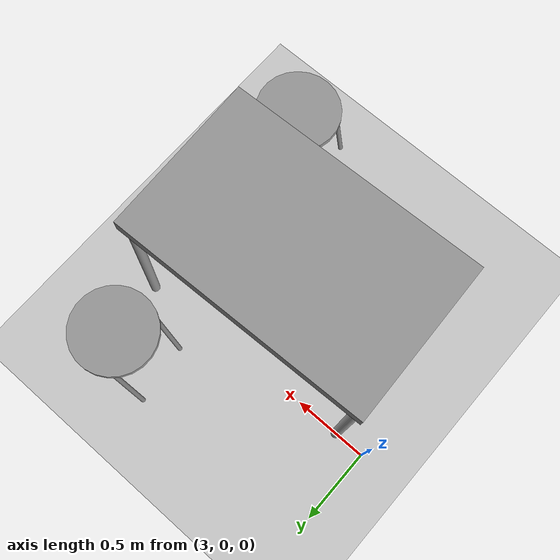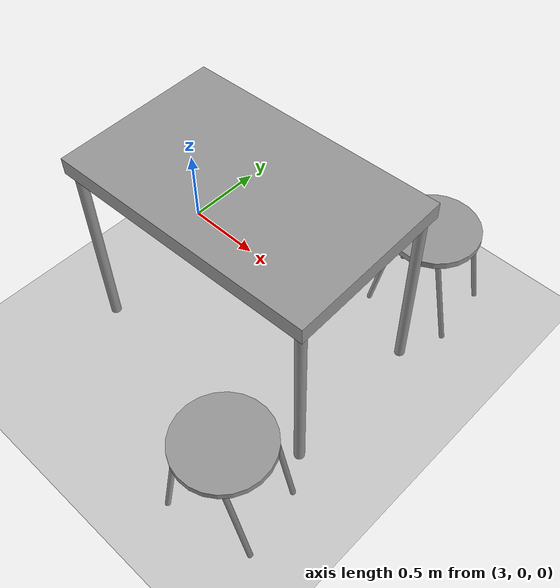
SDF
<sdf version="1.6">
 <world name="default">
  <model name="ground_plane">
   <static>1</static>
   <link name="link">
    <collision name="collision">
     <geometry><plane><normal>0 0 1</normal><size>100 100</size></plane></geometry>
     <surface><friction><ode><mu>100</mu><mu2>50</mu2></ode></friction></surface>
    </collision>
    <visual name="visual">
     <cast_shadows>0</cast_shadows>
     <geometry><plane><normal>0 0 1</normal><size>100 100</size></plane></geometry>
     <material>
      <script><uri>file://media/materials/scripts/gazebo.material</uri><name>Gazebo/Grey</name></script>
     </material>
    </visual>
   </link>
  </model>
  <model name="table01">
   <link name="link_0">
    <pose>0 0 1.2 0 -0 0</pose>
    <inertial>
     <mass>1</mass>
     <inertia>
      <ixx>0.166667</ixx>
      <ixy>0</ixy>
      <ixz>0</ixz>
      <iyy>0.166667</iyy>
      <iyz>0</iyz>
      <izz>0.166667</izz>
     </inertia>
    </inertial>
    <visual name="visual">
     <geometry><box><size>1.6 1 0.1</size></box></geometry>
     <material>
      <lighting>1</lighting>
      <script><uri>file://media/materials/scripts/gazebo.material</uri><name>Gazebo/Grey</name></script>
      <shader type="pixel"><normal_map>__default__</normal_map></shader>
      <ambient>0.3 0.3 0.3 1</ambient>
      <diffuse>0.7 0.7 0.7 1</diffuse>
      <specular>0.01 0.01 0.01 1</specular>
      <emissive>0 0 0 1</emissive>
     </material>
    </visual>
    <collision name="collision">
     <geometry><box><size>1.6 1 0.1</size></box></geometry>
     <surface>
      <friction>
       <ode><mu>1</mu><mu2>1</mu2><fdir1>0 0 0</fdir1><slip1>0</slip1><slip2>0</slip2></ode>
       <torsional>
        <coefficient>1</coefficient>
        <patch_radius>0</patch_radius>
        <surface_radius>0</surface_radius>
        <use_patch_radius>1</use_patch_radius>
        <ode><slip>0</slip></ode>
       </torsional>
      </friction>
      <bounce><restitution_coefficient>0</restitution_coefficient><threshold>1e+06</threshold></bounce>
      <contact>
       <collide_without_contact>0</collide_without_contact>
       <collide_without_contact_bitmask>1</collide_without_contact_bitmask>
       <collide_bitmask>1</collide_bitmask>
       <ode>
        <soft_cfm>0</soft_cfm>
        <soft_erp>0.2</soft_erp>
        <kp>1e+13</kp>
        <kd>1</kd>
        <max_vel>0.01</max_vel>
        <min_depth>0</min_depth>
       </ode>
       <bullet>
        <split_impulse>1</split_impulse>
        <split_impulse_penetration_threshold>-0.01</split_impulse_penetration_threshold>
        <soft_cfm>0</soft_cfm>
        <soft_erp>0.2</soft_erp>
        <kp>1e+13</kp>
        <kd>1</kd>
       </bullet>
      </contact>
     </surface>
    </collision>
   </link>
   <link name="link_1">
    <pose>0.75 -0.45 0.61 0 -0 0</pose>
    <inertial>
     <mass>1</mass>
     <inertia><ixx>0.145833</ixx><ixy>0</ixy><ixz>0</ixz><iyy>0.145833</iyy><iyz>0</iyz><izz>0.125</izz></inertia>
    </inertial>
    <visual name="visual">
     <geometry><cylinder><radius>0.03</radius><length>1.2</length></cylinder></geometry>
     <material>
      <lighting>1</lighting>
      <script><uri>file://media/materials/scripts/gazebo.material</uri><name>Gazebo/Grey</name></script>
      <shader type="pixel"><normal_map>__default__</normal_map></shader>
      <ambient>0.3 0.3 0.3 1</ambient>
      <diffuse>0.7 0.7 0.7 1</diffuse>
      <specular>0.01 0.01 0.01 1</specular>
      <emissive>0 0 0 1</emissive>
     </material>
    </visual>
    <collision name="collision">
     <geometry><cylinder><radius>0.03</radius><length>1.2</length></cylinder></geometry>
     <surface>
      <friction>
       <ode><mu>1</mu><mu2>1</mu2><fdir1>0 0 0</fdir1><slip1>0</slip1><slip2>0</slip2></ode>
       <torsional>
        <coefficient>1</coefficient>
        <patch_radius>0</patch_radius>
        <surface_radius>0</surface_radius>
        <use_patch_radius>1</use_patch_radius>
        <ode><slip>0</slip></ode>
       </torsional>
      </friction>
      <bounce><restitution_coefficient>0</restitution_coefficient><threshold>1e+06</threshold></bounce>
      <contact>
       <collide_without_contact>0</collide_without_contact>
       <collide_without_contact_bitmask>1</collide_without_contact_bitmask>
       <collide_bitmask>1</collide_bitmask>
       <ode>
        <soft_cfm>0</soft_cfm>
        <soft_erp>0.2</soft_erp>
        <kp>1e+13</kp>
        <kd>1</kd>
        <max_vel>0.01</max_vel>
        <min_depth>0</min_depth>
       </ode>
       <bullet>
        <split_impulse>1</split_impulse>
        <split_impulse_penetration_threshold>-0.01</split_impulse_penetration_threshold>
        <soft_cfm>0</soft_cfm>
        <soft_erp>0.2</soft_erp>
        <kp>1e+13</kp>
        <kd>1</kd>
       </bullet>
      </contact>
     </surface>
    </collision>
   </link>
   <link name="link_1_clone">
    <pose>0.75 0.45 0.61 0 -0 0</pose>
    <inertial>
     <mass>1</mass>
     <inertia><ixx>0.145833</ixx><ixy>0</ixy><ixz>0</ixz><iyy>0.145833</iyy><iyz>0</iyz><izz>0.125</izz></inertia>
    </inertial>
    <visual name="visual">
     <geometry><cylinder><radius>0.03</radius><length>1.2</length></cylinder></geometry>
     <material>
      <lighting>1</lighting>
      <script><uri>file://media/materials/scripts/gazebo.material</uri><name>Gazebo/Grey</name></script>
      <shader type="pixel"><normal_map>__default__</normal_map></shader>
      <ambient>0.3 0.3 0.3 1</ambient>
      <diffuse>0.7 0.7 0.7 1</diffuse>
      <specular>0.01 0.01 0.01 1</specular>
      <emissive>0 0 0 1</emissive>
     </material>
    </visual>
    <collision name="collision">
     <geometry><cylinder><radius>0.03</radius><length>1.2</length></cylinder></geometry>
     <surface>
      <friction>
       <ode><mu>1</mu><mu2>1</mu2><fdir1>0 0 0</fdir1><slip1>0</slip1><slip2>0</slip2></ode>
       <torsional>
        <coefficient>1</coefficient>
        <patch_radius>0</patch_radius>
        <surface_radius>0</surface_radius>
        <use_patch_radius>1</use_patch_radius>
        <ode><slip>0</slip></ode>
       </torsional>
      </friction>
      <bounce><restitution_coefficient>0</restitution_coefficient><threshold>1e+06</threshold></bounce>
      <contact>
       <collide_without_contact>0</collide_without_contact>
       <collide_without_contact_bitmask>1</collide_without_contact_bitmask>
       <collide_bitmask>1</collide_bitmask>
       <ode>
        <soft_cfm>0</soft_cfm>
        <soft_erp>0.2</soft_erp>
        <kp>1e+13</kp>
        <kd>1</kd>
        <max_vel>0.01</max_vel>
        <min_depth>0</min_depth>
       </ode>
       <bullet>
        <split_impulse>1</split_impulse>
        <split_impulse_penetration_threshold>-0.01</split_impulse_penetration_threshold>
        <soft_cfm>0</soft_cfm>
        <soft_erp>0.2</soft_erp>
        <kp>1e+13</kp>
        <kd>1</kd>
       </bullet>
      </contact>
     </surface>
    </collision>
   </link>
   <link name="link_1_clone_0">
    <pose>-0.75 -0.45 0.61 0 -0 0</pose>
    <inertial>
     <mass>1</mass>
     <inertia><ixx>0.145833</ixx><ixy>0</ixy><ixz>0</ixz><iyy>0.145833</iyy><iyz>0</iyz><izz>0.125</izz></inertia>
    </inertial>
    <visual name="visual">
     <geometry><cylinder><radius>0.03</radius><length>1.2</length></cylinder></geometry>
     <material>
      <lighting>1</lighting>
      <script><uri>file://media/materials/scripts/gazebo.material</uri><name>Gazebo/Grey</name></script>
      <shader type="pixel"><normal_map>__default__</normal_map></shader>
      <ambient>0.3 0.3 0.3 1</ambient>
      <diffuse>0.7 0.7 0.7 1</diffuse>
      <specular>0.01 0.01 0.01 1</specular>
      <emissive>0 0 0 1</emissive>
     </material>
    </visual>
    <collision name="collision">
     <geometry><cylinder><radius>0.03</radius><length>1.2</length></cylinder></geometry>
     <surface>
      <friction>
       <ode><mu>1</mu><mu2>1</mu2><fdir1>0 0 0</fdir1><slip1>0</slip1><slip2>0</slip2></ode>
       <torsional>
        <coefficient>1</coefficient>
        <patch_radius>0</patch_radius>
        <surface_radius>0</surface_radius>
        <use_patch_radius>1</use_patch_radius>
        <ode><slip>0</slip></ode>
       </torsional>
      </friction>
      <bounce><restitution_coefficient>0</restitution_coefficient><threshold>1e+06</threshold></bounce>
      <contact>
       <collide_without_contact>0</collide_without_contact>
       <collide_without_contact_bitmask>1</collide_without_contact_bitmask>
       <collide_bitmask>1</collide_bitmask>
       <ode>
        <soft_cfm>0</soft_cfm>
        <soft_erp>0.2</soft_erp>
        <kp>1e+13</kp>
        <kd>1</kd>
        <max_vel>0.01</max_vel>
        <min_depth>0</min_depth>
       </ode>
       <bullet>
        <split_impulse>1</split_impulse>
        <split_impulse_penetration_threshold>-0.01</split_impulse_penetration_threshold>
        <soft_cfm>0</soft_cfm>
        <soft_erp>0.2</soft_erp>
        <kp>1e+13</kp>
        <kd>1</kd>
       </bullet>
      </contact>
     </surface>
    </collision>
   </link>
   <link name="link_1_clone_1">
    <pose>-0.75 0.45 0.61 0 -0 0</pose>
    <inertial>
     <mass>1</mass>
     <inertia><ixx>0.145833</ixx><ixy>0</ixy><ixz>0</ixz><iyy>0.145833</iyy><iyz>0</iyz><izz>0.125</izz></inertia>
    </inertial>
    <visual name="visual">
     <geometry><cylinder><radius>0.03</radius><length>1.2</length></cylinder></geometry>
     <material>
      <lighting>1</lighting>
      <script><uri>file://media/materials/scripts/gazebo.material</uri><name>Gazebo/Grey</name></script>
      <shader type="pixel"><normal_map>__default__</normal_map></shader>
      <ambient>0.3 0.3 0.3 1</ambient>
      <diffuse>0.7 0.7 0.7 1</diffuse>
      <specular>0.01 0.01 0.01 1</specular>
      <emissive>0 0 0 1</emissive>
     </material>
    </visual>
    <collision name="collision">
     <geometry><cylinder><radius>0.03</radius><length>1.2</length></cylinder></geometry>
     <surface>
      <friction>
       <ode><mu>1</mu><mu2>1</mu2><fdir1>0 0 0</fdir1><slip1>0</slip1><slip2>0</slip2></ode>
       <torsional>
        <coefficient>1</coefficient>
        <patch_radius>0</patch_radius>
        <surface_radius>0</surface_radius>
        <use_patch_radius>1</use_patch_radius>
        <ode><slip>0</slip></ode>
       </torsional>
      </friction>
      <bounce><restitution_coefficient>0</restitution_coefficient><threshold>1e+06</threshold></bounce>
      <contact>
       <collide_without_contact>0</collide_without_contact>
       <collide_without_contact_bitmask>1</collide_without_contact_bitmask>
       <collide_bitmask>1</collide_bitmask>
       <ode>
        <soft_cfm>0</soft_cfm>
        <soft_erp>0.2</soft_erp>
        <kp>1e+13</kp>
        <kd>1</kd>
        <max_vel>0.01</max_vel>
        <min_depth>0</min_depth>
       </ode>
       <bullet>
        <split_impulse>1</split_impulse>
        <split_impulse_penetration_threshold>-0.01</split_impulse_penetration_threshold>
        <soft_cfm>0</soft_cfm>
        <soft_erp>0.2</soft_erp>
        <kp>1e+13</kp>
        <kd>1</kd>
       </bullet>
      </contact>
     </surface>
    </collision>
   </link>
   <joint name="link_0_JOINT_1" type="revolute">
    <parent>link_0</parent>
    <child>link_1</child>
    <axis>
     <xyz>0 0 1</xyz>
     <use_parent_model_frame>0</use_parent_model_frame>
     <limit>
      <lower>-1.79769e+308</lower>
      <upper>1.79769e+308</upper>
      <effort>-1</effort>
      <velocity>-1</velocity>
     </limit>
     <dynamics>
      <spring_reference>0</spring_reference>
      <spring_stiffness>0</spring_stiffness>
      <damping>0</damping>
     </dynamics>
    </axis>
    <physics>
     <ode><limit><cfm>0</cfm><erp>0.2</erp></limit><suspension><cfm>0</cfm><erp>0.2</erp></suspension></ode>
    </physics>
   </joint>
   <joint name="link_0_JOINT_2" type="revolute">
    <parent>link_0</parent>
    <child>link_1_clone_0</child>
    <axis>
     <xyz>0 0 1</xyz>
     <use_parent_model_frame>0</use_parent_model_frame>
     <limit>
      <lower>-1.79769e+308</lower>
      <upper>1.79769e+308</upper>
      <effort>-1</effort>
      <velocity>-1</velocity>
     </limit>
     <dynamics>
      <spring_reference>0</spring_reference>
      <spring_stiffness>0</spring_stiffness>
      <damping>0</damping>
     </dynamics>
    </axis>
    <physics>
     <ode><limit><cfm>0</cfm><erp>0.2</erp></limit><suspension><cfm>0</cfm><erp>0.2</erp></suspension></ode>
    </physics>
   </joint>
   <joint name="link_0_JOINT_3" type="revolute">
    <parent>link_0</parent>
    <child>link_1_clone</child>
    <axis>
     <xyz>0 0 1</xyz>
     <use_parent_model_frame>0</use_parent_model_frame>
     <limit>
      <lower>-1.79769e+308</lower>
      <upper>1.79769e+308</upper>
      <effort>-1</effort>
      <velocity>-1</velocity>
     </limit>
     <dynamics>
      <spring_reference>0</spring_reference>
      <spring_stiffness>0</spring_stiffness>
      <damping>0</damping>
     </dynamics>
    </axis>
    <physics>
     <ode><limit><cfm>0</cfm><erp>0.2</erp></limit><suspension><cfm>0</cfm><erp>0.2</erp></suspension></ode>
    </physics>
   </joint>
   <joint name="link_0_JOINT_4" type="revolute">
    <parent>link_0</parent>
    <child>link_1_clone_1</child>
    <axis>
     <xyz>0 0 1</xyz>
     <use_parent_model_frame>0</use_parent_model_frame>
     <limit>
      <lower>-1.79769e+308</lower>
      <upper>1.79769e+308</upper>
      <effort>-1</effort>
      <velocity>-1</velocity>
     </limit>
     <dynamics>
      <spring_reference>0</spring_reference>
      <spring_stiffness>0</spring_stiffness>
      <damping>0</damping>
     </dynamics>
    </axis>
    <physics>
     <ode><limit><cfm>0</cfm><erp>0.2</erp></limit><suspension><cfm>0</cfm><erp>0.2</erp></suspension></ode>
    </physics>
   </joint>
   <static>0</static>
   <pose>3.97031 -0.426929 -0.010002 0 -2e-06 0.032064</pose>
  </model>
  <model name="chair01_0">
   <link name="link_1">
    <pose>0 0 0.6 0 -0 0</pose>
    <inertial>
     <mass>1</mass>
     <inertia><ixx>0.145833</ixx><ixy>0</ixy><ixz>0</ixz><iyy>0.145833</iyy><iyz>0</iyz><izz>0.125</izz></inertia>
    </inertial>
    <visual name="visual">
     <geometry><cylinder><radius>0.27</radius><length>0.04</length></cylinder></geometry>
     <material>
      <lighting>1</lighting>
      <script><uri>file://media/materials/scripts/gazebo.material</uri><name>Gazebo/Grey</name></script>
      <shader type="pixel"><normal_map>__default__</normal_map></shader>
      <ambient>0.3 0.3 0.3 1</ambient>
      <diffuse>0.7 0.7 0.7 1</diffuse>
      <specular>0.01 0.01 0.01 1</specular>
      <emissive>0 0 0 1</emissive>
     </material>
    </visual>
    <collision name="collision">
     <geometry><cylinder><radius>0.27</radius><length>0.04</length></cylinder></geometry>
     <surface>
      <friction>
       <ode><mu>1</mu><mu2>1</mu2><fdir1>0 0 0</fdir1><slip1>0</slip1><slip2>0</slip2></ode>
       <torsional>
        <coefficient>1</coefficient>
        <patch_radius>0</patch_radius>
        <surface_radius>0</surface_radius>
        <use_patch_radius>1</use_patch_radius>
        <ode><slip>0</slip></ode>
       </torsional>
      </friction>
      <bounce><restitution_coefficient>0</restitution_coefficient><threshold>1e+06</threshold></bounce>
      <contact>
       <collide_without_contact>0</collide_without_contact>
       <collide_without_contact_bitmask>1</collide_without_contact_bitmask>
       <collide_bitmask>1</collide_bitmask>
       <ode>
        <soft_cfm>0</soft_cfm>
        <soft_erp>0.2</soft_erp>
        <kp>1e+13</kp>
        <kd>1</kd>
        <max_vel>0.01</max_vel>
        <min_depth>0</min_depth>
       </ode>
       <bullet>
        <split_impulse>1</split_impulse>
        <split_impulse_penetration_threshold>-0.01</split_impulse_penetration_threshold>
        <soft_cfm>0</soft_cfm>
        <soft_erp>0.2</soft_erp>
        <kp>1e+13</kp>
        <kd>1</kd>
       </bullet>
      </contact>
     </surface>
    </collision>
   </link>
   <link name="link_2">
    <pose>0.2 0.2 0.3 0 -0.2 0</pose>
    <inertial>
     <mass>1</mass>
     <inertia><ixx>0.145833</ixx><ixy>0</ixy><ixz>0</ixz><iyy>0.145833</iyy><iyz>0</iyz><izz>0.125</izz></inertia>
    </inertial>
    <visual name="visual">
     <geometry><cylinder><radius>0.015</radius><length>0.6</length></cylinder></geometry>
     <material>
      <lighting>1</lighting>
      <script><uri>file://media/materials/scripts/gazebo.material</uri><name>Gazebo/Grey</name></script>
      <shader type="pixel"><normal_map>__default__</normal_map></shader>
      <ambient>0.3 0.3 0.3 1</ambient>
      <diffuse>0.7 0.7 0.7 1</diffuse>
      <specular>0.01 0.01 0.01 1</specular>
      <emissive>0 0 0 1</emissive>
     </material>
    </visual>
    <collision name="collision">
     <geometry><cylinder><radius>0.015</radius><length>0.6</length></cylinder></geometry>
     <surface>
      <friction>
       <ode><mu>1</mu><mu2>1</mu2><fdir1>0 0 0</fdir1><slip1>0</slip1><slip2>0</slip2></ode>
       <torsional>
        <coefficient>1</coefficient>
        <patch_radius>0</patch_radius>
        <surface_radius>0</surface_radius>
        <use_patch_radius>1</use_patch_radius>
        <ode><slip>0</slip></ode>
       </torsional>
      </friction>
      <bounce><restitution_coefficient>0</restitution_coefficient><threshold>1e+06</threshold></bounce>
      <contact>
       <collide_without_contact>0</collide_without_contact>
       <collide_without_contact_bitmask>1</collide_without_contact_bitmask>
       <collide_bitmask>1</collide_bitmask>
       <ode>
        <soft_cfm>0</soft_cfm>
        <soft_erp>0.2</soft_erp>
        <kp>1e+13</kp>
        <kd>1</kd>
        <max_vel>0.01</max_vel>
        <min_depth>0</min_depth>
       </ode>
       <bullet>
        <split_impulse>1</split_impulse>
        <split_impulse_penetration_threshold>-0.01</split_impulse_penetration_threshold>
        <soft_cfm>0</soft_cfm>
        <soft_erp>0.2</soft_erp>
        <kp>1e+13</kp>
        <kd>1</kd>
       </bullet>
      </contact>
     </surface>
    </collision>
   </link>
   <link name="link_2_clone">
    <pose>0.2 -0.2 0.3 0 -0.2 0</pose>
    <inertial>
     <mass>1</mass>
     <inertia><ixx>0.145833</ixx><ixy>0</ixy><ixz>0</ixz><iyy>0.145833</iyy><iyz>0</iyz><izz>0.125</izz></inertia>
    </inertial>
    <visual name="visual">
     <geometry><cylinder><radius>0.015</radius><length>0.6</length></cylinder></geometry>
     <material>
      <lighting>1</lighting>
      <script><uri>file://media/materials/scripts/gazebo.material</uri><name>Gazebo/Grey</name></script>
      <shader type="pixel"><normal_map>__default__</normal_map></shader>
      <ambient>0.3 0.3 0.3 1</ambient>
      <diffuse>0.7 0.7 0.7 1</diffuse>
      <specular>0.01 0.01 0.01 1</specular>
      <emissive>0 0 0 1</emissive>
     </material>
    </visual>
    <collision name="collision">
     <geometry><cylinder><radius>0.015</radius><length>0.6</length></cylinder></geometry>
     <surface>
      <friction>
       <ode><mu>1</mu><mu2>1</mu2><fdir1>0 0 0</fdir1><slip1>0</slip1><slip2>0</slip2></ode>
       <torsional>
        <coefficient>1</coefficient>
        <patch_radius>0</patch_radius>
        <surface_radius>0</surface_radius>
        <use_patch_radius>1</use_patch_radius>
        <ode><slip>0</slip></ode>
       </torsional>
      </friction>
      <bounce><restitution_coefficient>0</restitution_coefficient><threshold>1e+06</threshold></bounce>
      <contact>
       <collide_without_contact>0</collide_without_contact>
       <collide_without_contact_bitmask>1</collide_without_contact_bitmask>
       <collide_bitmask>1</collide_bitmask>
       <ode>
        <soft_cfm>0</soft_cfm>
        <soft_erp>0.2</soft_erp>
        <kp>1e+13</kp>
        <kd>1</kd>
        <max_vel>0.01</max_vel>
        <min_depth>0</min_depth>
       </ode>
       <bullet>
        <split_impulse>1</split_impulse>
        <split_impulse_penetration_threshold>-0.01</split_impulse_penetration_threshold>
        <soft_cfm>0</soft_cfm>
        <soft_erp>0.2</soft_erp>
        <kp>1e+13</kp>
        <kd>1</kd>
       </bullet>
      </contact>
     </surface>
    </collision>
   </link>
   <link name="link_2_clone_0">
    <pose>-0.2 -0.2 0.3 0 0.2 0</pose>
    <inertial>
     <mass>1</mass>
     <inertia><ixx>0.145833</ixx><ixy>0</ixy><ixz>0</ixz><iyy>0.145833</iyy><iyz>0</iyz><izz>0.125</izz></inertia>
    </inertial>
    <visual name="visual">
     <geometry><cylinder><radius>0.015</radius><length>0.6</length></cylinder></geometry>
     <material>
      <lighting>1</lighting>
      <script><uri>file://media/materials/scripts/gazebo.material</uri><name>Gazebo/Grey</name></script>
      <shader type="pixel"><normal_map>__default__</normal_map></shader>
      <ambient>0.3 0.3 0.3 1</ambient>
      <diffuse>0.7 0.7 0.7 1</diffuse>
      <specular>0.01 0.01 0.01 1</specular>
      <emissive>0 0 0 1</emissive>
     </material>
    </visual>
    <collision name="collision">
     <geometry><cylinder><radius>0.015</radius><length>0.6</length></cylinder></geometry>
     <surface>
      <friction>
       <ode><mu>1</mu><mu2>1</mu2><fdir1>0 0 0</fdir1><slip1>0</slip1><slip2>0</slip2></ode>
       <torsional>
        <coefficient>1</coefficient>
        <patch_radius>0</patch_radius>
        <surface_radius>0</surface_radius>
        <use_patch_radius>1</use_patch_radius>
        <ode><slip>0</slip></ode>
       </torsional>
      </friction>
      <bounce><restitution_coefficient>0</restitution_coefficient><threshold>1e+06</threshold></bounce>
      <contact>
       <collide_without_contact>0</collide_without_contact>
       <collide_without_contact_bitmask>1</collide_without_contact_bitmask>
       <collide_bitmask>1</collide_bitmask>
       <ode>
        <soft_cfm>0</soft_cfm>
        <soft_erp>0.2</soft_erp>
        <kp>1e+13</kp>
        <kd>1</kd>
        <max_vel>0.01</max_vel>
        <min_depth>0</min_depth>
       </ode>
       <bullet>
        <split_impulse>1</split_impulse>
        <split_impulse_penetration_threshold>-0.01</split_impulse_penetration_threshold>
        <soft_cfm>0</soft_cfm>
        <soft_erp>0.2</soft_erp>
        <kp>1e+13</kp>
        <kd>1</kd>
       </bullet>
      </contact>
     </surface>
    </collision>
   </link>
   <link name="link_2_clone_1">
    <pose>-0.2 0.2 0.3 0 0.21 0</pose>
    <inertial>
     <mass>1</mass>
     <inertia><ixx>0.145833</ixx><ixy>0</ixy><ixz>0</ixz><iyy>0.145833</iyy><iyz>0</iyz><izz>0.125</izz></inertia>
    </inertial>
    <visual name="visual">
     <geometry><cylinder><radius>0.015</radius><length>0.6</length></cylinder></geometry>
     <material>
      <lighting>1</lighting>
      <script><uri>file://media/materials/scripts/gazebo.material</uri><name>Gazebo/Grey</name></script>
      <shader type="pixel"><normal_map>__default__</normal_map></shader>
      <ambient>0.3 0.3 0.3 1</ambient>
      <diffuse>0.7 0.7 0.7 1</diffuse>
      <specular>0.01 0.01 0.01 1</specular>
      <emissive>0 0 0 1</emissive>
     </material>
    </visual>
    <collision name="collision">
     <geometry><cylinder><radius>0.015</radius><length>0.6</length></cylinder></geometry>
     <surface>
      <friction>
       <ode><mu>1</mu><mu2>1</mu2><fdir1>0 0 0</fdir1><slip1>0</slip1><slip2>0</slip2></ode>
       <torsional>
        <coefficient>1</coefficient>
        <patch_radius>0</patch_radius>
        <surface_radius>0</surface_radius>
        <use_patch_radius>1</use_patch_radius>
        <ode><slip>0</slip></ode>
       </torsional>
      </friction>
      <bounce><restitution_coefficient>0</restitution_coefficient><threshold>1e+06</threshold></bounce>
      <contact>
       <collide_without_contact>0</collide_without_contact>
       <collide_without_contact_bitmask>1</collide_without_contact_bitmask>
       <collide_bitmask>1</collide_bitmask>
       <ode>
        <soft_cfm>0</soft_cfm>
        <soft_erp>0.2</soft_erp>
        <kp>1e+13</kp>
        <kd>1</kd>
        <max_vel>0.01</max_vel>
        <min_depth>0</min_depth>
       </ode>
       <bullet>
        <split_impulse>1</split_impulse>
        <split_impulse_penetration_threshold>-0.01</split_impulse_penetration_threshold>
        <soft_cfm>0</soft_cfm>
        <soft_erp>0.2</soft_erp>
        <kp>1e+13</kp>
        <kd>1</kd>
       </bullet>
      </contact>
     </surface>
    </collision>
   </link>
   <joint name="link_1_JOINT_1" type="revolute">
    <parent>link_1</parent>
    <child>link_2</child>
    <axis>
     <xyz>0 0 1</xyz>
     <use_parent_model_frame>0</use_parent_model_frame>
     <limit>
      <lower>-1.79769e+308</lower>
      <upper>1.79769e+308</upper>
      <effort>-1</effort>
      <velocity>-1</velocity>
     </limit>
     <dynamics>
      <spring_reference>0</spring_reference>
      <spring_stiffness>0</spring_stiffness>
      <damping>0</damping>
     </dynamics>
    </axis>
    <physics>
     <ode><limit><cfm>0</cfm><erp>0.2</erp></limit><suspension><cfm>0</cfm><erp>0.2</erp></suspension></ode>
    </physics>
   </joint>
   <joint name="link_1_JOINT_2" type="revolute">
    <parent>link_1</parent>
    <child>link_2_clone</child>
    <axis>
     <xyz>0 0 1</xyz>
     <use_parent_model_frame>0</use_parent_model_frame>
     <limit>
      <lower>-1.79769e+308</lower>
      <upper>1.79769e+308</upper>
      <effort>-1</effort>
      <velocity>-1</velocity>
     </limit>
     <dynamics>
      <spring_reference>0</spring_reference>
      <spring_stiffness>0</spring_stiffness>
      <damping>0</damping>
     </dynamics>
    </axis>
    <physics>
     <ode><limit><cfm>0</cfm><erp>0.2</erp></limit><suspension><cfm>0</cfm><erp>0.2</erp></suspension></ode>
    </physics>
   </joint>
   <joint name="link_1_JOINT_3" type="revolute">
    <parent>link_1</parent>
    <child>link_2_clone_0</child>
    <axis>
     <xyz>0 0 1</xyz>
     <use_parent_model_frame>0</use_parent_model_frame>
     <limit>
      <lower>-1.79769e+308</lower>
      <upper>1.79769e+308</upper>
      <effort>-1</effort>
      <velocity>-1</velocity>
     </limit>
     <dynamics>
      <spring_reference>0</spring_reference>
      <spring_stiffness>0</spring_stiffness>
      <damping>0</damping>
     </dynamics>
    </axis>
    <physics>
     <ode><limit><cfm>0</cfm><erp>0.2</erp></limit><suspension><cfm>0</cfm><erp>0.2</erp></suspension></ode>
    </physics>
   </joint>
   <joint name="link_1_JOINT_4" type="revolute">
    <parent>link_1</parent>
    <child>link_2_clone_1</child>
    <axis>
     <xyz>0 0 1</xyz>
     <use_parent_model_frame>0</use_parent_model_frame>
     <limit>
      <lower>-1.79769e+308</lower>
      <upper>1.79769e+308</upper>
      <effort>-1</effort>
      <velocity>-1</velocity>
     </limit>
     <dynamics>
      <spring_reference>0</spring_reference>
      <spring_stiffness>0</spring_stiffness>
      <damping>0</damping>
     </dynamics>
    </axis>
    <physics>
     <ode><limit><cfm>0</cfm><erp>0.2</erp></limit><suspension><cfm>0</cfm><erp>0.2</erp></suspension></ode>
    </physics>
   </joint>
   <static>0</static>
   <pose>4.64621 -1.28456 -0.003009 -0.000652 -0.000533 0.190688</pose>
  </model>
  <model name="chair01_4">
   <link name="link_1">
    <pose>0 0 0.6 0 -0 0</pose>
    <inertial>
     <mass>1</mass>
     <inertia><ixx>0.145833</ixx><ixy>0</ixy><ixz>0</ixz><iyy>0.145833</iyy><iyz>0</iyz><izz>0.125</izz></inertia>
    </inertial>
    <visual name="visual">
     <geometry><cylinder><radius>0.27</radius><length>0.04</length></cylinder></geometry>
     <material>
      <lighting>1</lighting>
      <script><uri>file://media/materials/scripts/gazebo.material</uri><name>Gazebo/Grey</name></script>
      <shader type="pixel"><normal_map>__default__</normal_map></shader>
      <ambient>0.3 0.3 0.3 1</ambient>
      <diffuse>0.7 0.7 0.7 1</diffuse>
      <specular>0.01 0.01 0.01 1</specular>
      <emissive>0 0 0 1</emissive>
     </material>
    </visual>
    <collision name="collision">
     <geometry><cylinder><radius>0.27</radius><length>0.04</length></cylinder></geometry>
     <surface>
      <friction>
       <ode><mu>1</mu><mu2>1</mu2><fdir1>0 0 0</fdir1><slip1>0</slip1><slip2>0</slip2></ode>
       <torsional>
        <coefficient>1</coefficient>
        <patch_radius>0</patch_radius>
        <surface_radius>0</surface_radius>
        <use_patch_radius>1</use_patch_radius>
        <ode><slip>0</slip></ode>
       </torsional>
      </friction>
      <bounce><restitution_coefficient>0</restitution_coefficient><threshold>1e+06</threshold></bounce>
      <contact>
       <collide_without_contact>0</collide_without_contact>
       <collide_without_contact_bitmask>1</collide_without_contact_bitmask>
       <collide_bitmask>1</collide_bitmask>
       <ode>
        <soft_cfm>0</soft_cfm>
        <soft_erp>0.2</soft_erp>
        <kp>1e+13</kp>
        <kd>1</kd>
        <max_vel>0.01</max_vel>
        <min_depth>0</min_depth>
       </ode>
       <bullet>
        <split_impulse>1</split_impulse>
        <split_impulse_penetration_threshold>-0.01</split_impulse_penetration_threshold>
        <soft_cfm>0</soft_cfm>
        <soft_erp>0.2</soft_erp>
        <kp>1e+13</kp>
        <kd>1</kd>
       </bullet>
      </contact>
     </surface>
    </collision>
   </link>
   <link name="link_2">
    <pose>0.2 0.2 0.3 0 -0.2 0</pose>
    <inertial>
     <mass>1</mass>
     <inertia><ixx>0.145833</ixx><ixy>0</ixy><ixz>0</ixz><iyy>0.145833</iyy><iyz>0</iyz><izz>0.125</izz></inertia>
    </inertial>
    <visual name="visual">
     <geometry><cylinder><radius>0.015</radius><length>0.6</length></cylinder></geometry>
     <material>
      <lighting>1</lighting>
      <script><uri>file://media/materials/scripts/gazebo.material</uri><name>Gazebo/Grey</name></script>
      <shader type="pixel"><normal_map>__default__</normal_map></shader>
      <ambient>0.3 0.3 0.3 1</ambient>
      <diffuse>0.7 0.7 0.7 1</diffuse>
      <specular>0.01 0.01 0.01 1</specular>
      <emissive>0 0 0 1</emissive>
     </material>
    </visual>
    <collision name="collision">
     <geometry><cylinder><radius>0.015</radius><length>0.6</length></cylinder></geometry>
     <surface>
      <friction>
       <ode><mu>1</mu><mu2>1</mu2><fdir1>0 0 0</fdir1><slip1>0</slip1><slip2>0</slip2></ode>
       <torsional>
        <coefficient>1</coefficient>
        <patch_radius>0</patch_radius>
        <surface_radius>0</surface_radius>
        <use_patch_radius>1</use_patch_radius>
        <ode><slip>0</slip></ode>
       </torsional>
      </friction>
      <bounce><restitution_coefficient>0</restitution_coefficient><threshold>1e+06</threshold></bounce>
      <contact>
       <collide_without_contact>0</collide_without_contact>
       <collide_without_contact_bitmask>1</collide_without_contact_bitmask>
       <collide_bitmask>1</collide_bitmask>
       <ode>
        <soft_cfm>0</soft_cfm>
        <soft_erp>0.2</soft_erp>
        <kp>1e+13</kp>
        <kd>1</kd>
        <max_vel>0.01</max_vel>
        <min_depth>0</min_depth>
       </ode>
       <bullet>
        <split_impulse>1</split_impulse>
        <split_impulse_penetration_threshold>-0.01</split_impulse_penetration_threshold>
        <soft_cfm>0</soft_cfm>
        <soft_erp>0.2</soft_erp>
        <kp>1e+13</kp>
        <kd>1</kd>
       </bullet>
      </contact>
     </surface>
    </collision>
   </link>
   <link name="link_2_clone">
    <pose>0.2 -0.2 0.3 0 -0.2 0</pose>
    <inertial>
     <mass>1</mass>
     <inertia><ixx>0.145833</ixx><ixy>0</ixy><ixz>0</ixz><iyy>0.145833</iyy><iyz>0</iyz><izz>0.125</izz></inertia>
    </inertial>
    <visual name="visual">
     <geometry><cylinder><radius>0.015</radius><length>0.6</length></cylinder></geometry>
     <material>
      <lighting>1</lighting>
      <script><uri>file://media/materials/scripts/gazebo.material</uri><name>Gazebo/Grey</name></script>
      <shader type="pixel"><normal_map>__default__</normal_map></shader>
      <ambient>0.3 0.3 0.3 1</ambient>
      <diffuse>0.7 0.7 0.7 1</diffuse>
      <specular>0.01 0.01 0.01 1</specular>
      <emissive>0 0 0 1</emissive>
     </material>
    </visual>
    <collision name="collision">
     <geometry><cylinder><radius>0.015</radius><length>0.6</length></cylinder></geometry>
     <surface>
      <friction>
       <ode><mu>1</mu><mu2>1</mu2><fdir1>0 0 0</fdir1><slip1>0</slip1><slip2>0</slip2></ode>
       <torsional>
        <coefficient>1</coefficient>
        <patch_radius>0</patch_radius>
        <surface_radius>0</surface_radius>
        <use_patch_radius>1</use_patch_radius>
        <ode><slip>0</slip></ode>
       </torsional>
      </friction>
      <bounce><restitution_coefficient>0</restitution_coefficient><threshold>1e+06</threshold></bounce>
      <contact>
       <collide_without_contact>0</collide_without_contact>
       <collide_without_contact_bitmask>1</collide_without_contact_bitmask>
       <collide_bitmask>1</collide_bitmask>
       <ode>
        <soft_cfm>0</soft_cfm>
        <soft_erp>0.2</soft_erp>
        <kp>1e+13</kp>
        <kd>1</kd>
        <max_vel>0.01</max_vel>
        <min_depth>0</min_depth>
       </ode>
       <bullet>
        <split_impulse>1</split_impulse>
        <split_impulse_penetration_threshold>-0.01</split_impulse_penetration_threshold>
        <soft_cfm>0</soft_cfm>
        <soft_erp>0.2</soft_erp>
        <kp>1e+13</kp>
        <kd>1</kd>
       </bullet>
      </contact>
     </surface>
    </collision>
   </link>
   <link name="link_2_clone_0">
    <pose>-0.2 -0.2 0.3 0 0.2 0</pose>
    <inertial>
     <mass>1</mass>
     <inertia><ixx>0.145833</ixx><ixy>0</ixy><ixz>0</ixz><iyy>0.145833</iyy><iyz>0</iyz><izz>0.125</izz></inertia>
    </inertial>
    <visual name="visual">
     <geometry><cylinder><radius>0.015</radius><length>0.6</length></cylinder></geometry>
     <material>
      <lighting>1</lighting>
      <script><uri>file://media/materials/scripts/gazebo.material</uri><name>Gazebo/Grey</name></script>
      <shader type="pixel"><normal_map>__default__</normal_map></shader>
      <ambient>0.3 0.3 0.3 1</ambient>
      <diffuse>0.7 0.7 0.7 1</diffuse>
      <specular>0.01 0.01 0.01 1</specular>
      <emissive>0 0 0 1</emissive>
     </material>
    </visual>
    <collision name="collision">
     <geometry><cylinder><radius>0.015</radius><length>0.6</length></cylinder></geometry>
     <surface>
      <friction>
       <ode><mu>1</mu><mu2>1</mu2><fdir1>0 0 0</fdir1><slip1>0</slip1><slip2>0</slip2></ode>
       <torsional>
        <coefficient>1</coefficient>
        <patch_radius>0</patch_radius>
        <surface_radius>0</surface_radius>
        <use_patch_radius>1</use_patch_radius>
        <ode><slip>0</slip></ode>
       </torsional>
      </friction>
      <bounce><restitution_coefficient>0</restitution_coefficient><threshold>1e+06</threshold></bounce>
      <contact>
       <collide_without_contact>0</collide_without_contact>
       <collide_without_contact_bitmask>1</collide_without_contact_bitmask>
       <collide_bitmask>1</collide_bitmask>
       <ode>
        <soft_cfm>0</soft_cfm>
        <soft_erp>0.2</soft_erp>
        <kp>1e+13</kp>
        <kd>1</kd>
        <max_vel>0.01</max_vel>
        <min_depth>0</min_depth>
       </ode>
       <bullet>
        <split_impulse>1</split_impulse>
        <split_impulse_penetration_threshold>-0.01</split_impulse_penetration_threshold>
        <soft_cfm>0</soft_cfm>
        <soft_erp>0.2</soft_erp>
        <kp>1e+13</kp>
        <kd>1</kd>
       </bullet>
      </contact>
     </surface>
    </collision>
   </link>
   <link name="link_2_clone_1">
    <pose>-0.2 0.2 0.3 0 0.21 0</pose>
    <inertial>
     <mass>1</mass>
     <inertia><ixx>0.145833</ixx><ixy>0</ixy><ixz>0</ixz><iyy>0.145833</iyy><iyz>0</iyz><izz>0.125</izz></inertia>
    </inertial>
    <visual name="visual">
     <geometry><cylinder><radius>0.015</radius><length>0.6</length></cylinder></geometry>
     <material>
      <lighting>1</lighting>
      <script><uri>file://media/materials/scripts/gazebo.material</uri><name>Gazebo/Grey</name></script>
      <shader type="pixel"><normal_map>__default__</normal_map></shader>
      <ambient>0.3 0.3 0.3 1</ambient>
      <diffuse>0.7 0.7 0.7 1</diffuse>
      <specular>0.01 0.01 0.01 1</specular>
      <emissive>0 0 0 1</emissive>
     </material>
    </visual>
    <collision name="collision">
     <geometry><cylinder><radius>0.015</radius><length>0.6</length></cylinder></geometry>
     <surface>
      <friction>
       <ode><mu>1</mu><mu2>1</mu2><fdir1>0 0 0</fdir1><slip1>0</slip1><slip2>0</slip2></ode>
       <torsional>
        <coefficient>1</coefficient>
        <patch_radius>0</patch_radius>
        <surface_radius>0</surface_radius>
        <use_patch_radius>1</use_patch_radius>
        <ode><slip>0</slip></ode>
       </torsional>
      </friction>
      <bounce><restitution_coefficient>0</restitution_coefficient><threshold>1e+06</threshold></bounce>
      <contact>
       <collide_without_contact>0</collide_without_contact>
       <collide_without_contact_bitmask>1</collide_without_contact_bitmask>
       <collide_bitmask>1</collide_bitmask>
       <ode>
        <soft_cfm>0</soft_cfm>
        <soft_erp>0.2</soft_erp>
        <kp>1e+13</kp>
        <kd>1</kd>
        <max_vel>0.01</max_vel>
        <min_depth>0</min_depth>
       </ode>
       <bullet>
        <split_impulse>1</split_impulse>
        <split_impulse_penetration_threshold>-0.01</split_impulse_penetration_threshold>
        <soft_cfm>0</soft_cfm>
        <soft_erp>0.2</soft_erp>
        <kp>1e+13</kp>
        <kd>1</kd>
       </bullet>
      </contact>
     </surface>
    </collision>
   </link>
   <joint name="link_1_JOINT_1" type="revolute">
    <parent>link_1</parent>
    <child>link_2</child>
    <axis>
     <xyz>0 0 1</xyz>
     <use_parent_model_frame>0</use_parent_model_frame>
     <limit>
      <lower>-1.79769e+308</lower>
      <upper>1.79769e+308</upper>
      <effort>-1</effort>
      <velocity>-1</velocity>
     </limit>
     <dynamics>
      <spring_reference>0</spring_reference>
      <spring_stiffness>0</spring_stiffness>
      <damping>0</damping>
     </dynamics>
    </axis>
    <physics>
     <ode><limit><cfm>0</cfm><erp>0.2</erp></limit><suspension><cfm>0</cfm><erp>0.2</erp></suspension></ode>
    </physics>
   </joint>
   <joint name="link_1_JOINT_2" type="revolute">
    <parent>link_1</parent>
    <child>link_2_clone</child>
    <axis>
     <xyz>0 0 1</xyz>
     <use_parent_model_frame>0</use_parent_model_frame>
     <limit>
      <lower>-1.79769e+308</lower>
      <upper>1.79769e+308</upper>
      <effort>-1</effort>
      <velocity>-1</velocity>
     </limit>
     <dynamics>
      <spring_reference>0</spring_reference>
      <spring_stiffness>0</spring_stiffness>
      <damping>0</damping>
     </dynamics>
    </axis>
    <physics>
     <ode><limit><cfm>0</cfm><erp>0.2</erp></limit><suspension><cfm>0</cfm><erp>0.2</erp></suspension></ode>
    </physics>
   </joint>
   <joint name="link_1_JOINT_3" type="revolute">
    <parent>link_1</parent>
    <child>link_2_clone_0</child>
    <axis>
     <xyz>0 0 1</xyz>
     <use_parent_model_frame>0</use_parent_model_frame>
     <limit>
      <lower>-1.79769e+308</lower>
      <upper>1.79769e+308</upper>
      <effort>-1</effort>
      <velocity>-1</velocity>
     </limit>
     <dynamics>
      <spring_reference>0</spring_reference>
      <spring_stiffness>0</spring_stiffness>
      <damping>0</damping>
     </dynamics>
    </axis>
    <physics>
     <ode><limit><cfm>0</cfm><erp>0.2</erp></limit><suspension><cfm>0</cfm><erp>0.2</erp></suspension></ode>
    </physics>
   </joint>
   <joint name="link_1_JOINT_4" type="revolute">
    <parent>link_1</parent>
    <child>link_2_clone_1</child>
    <axis>
     <xyz>0 0 1</xyz>
     <use_parent_model_frame>0</use_parent_model_frame>
     <limit>
      <lower>-1.79769e+308</lower>
      <upper>1.79769e+308</upper>
      <effort>-1</effort>
      <velocity>-1</velocity>
     </limit>
     <dynamics>
      <spring_reference>0</spring_reference>
      <spring_stiffness>0</spring_stiffness>
      <damping>0</damping>
     </dynamics>
    </axis>
    <physics>
     <ode><limit><cfm>0</cfm><erp>0.2</erp></limit><suspension><cfm>0</cfm><erp>0.2</erp></suspension></ode>
    </physics>
   </joint>
   <static>0</static>
   <pose>4.53927 0.474412 -0.003 -0.00061 -0.000498 0.117778</pose>
  </model>
 </world>
</sdf>
